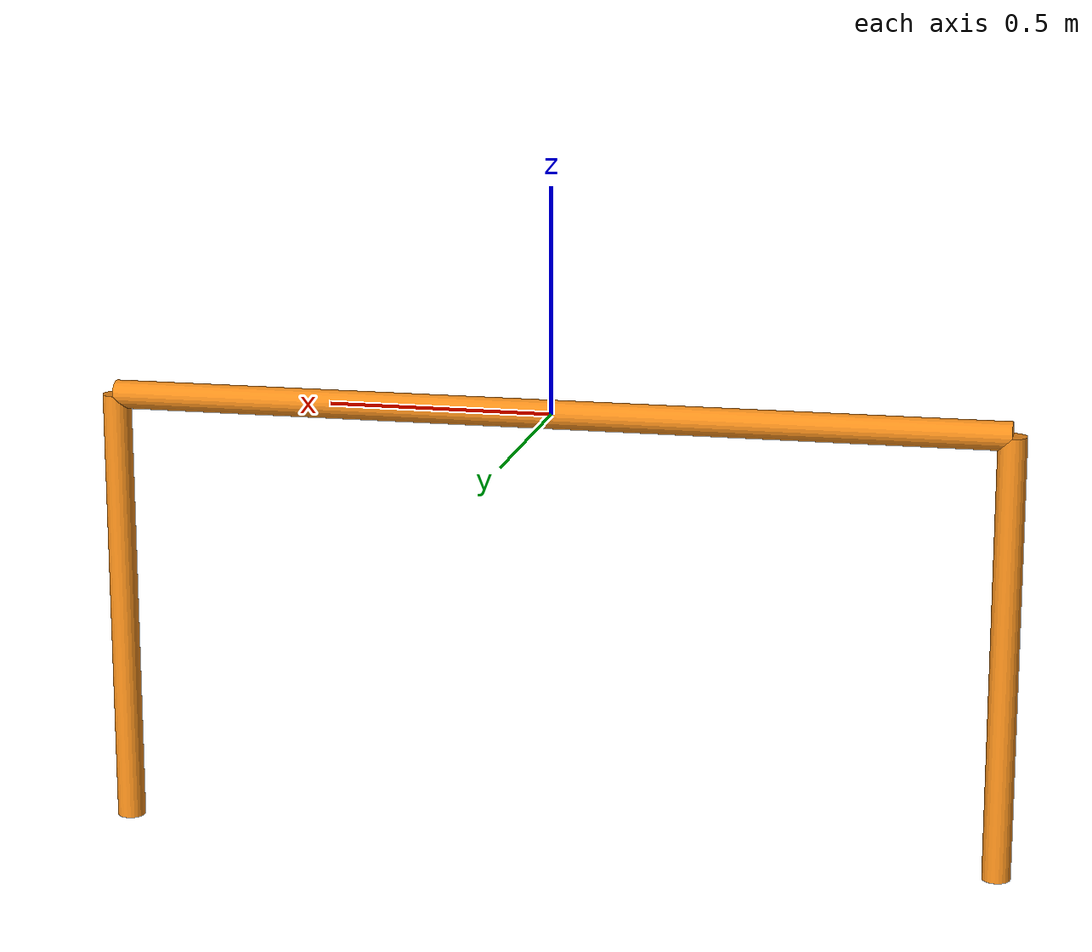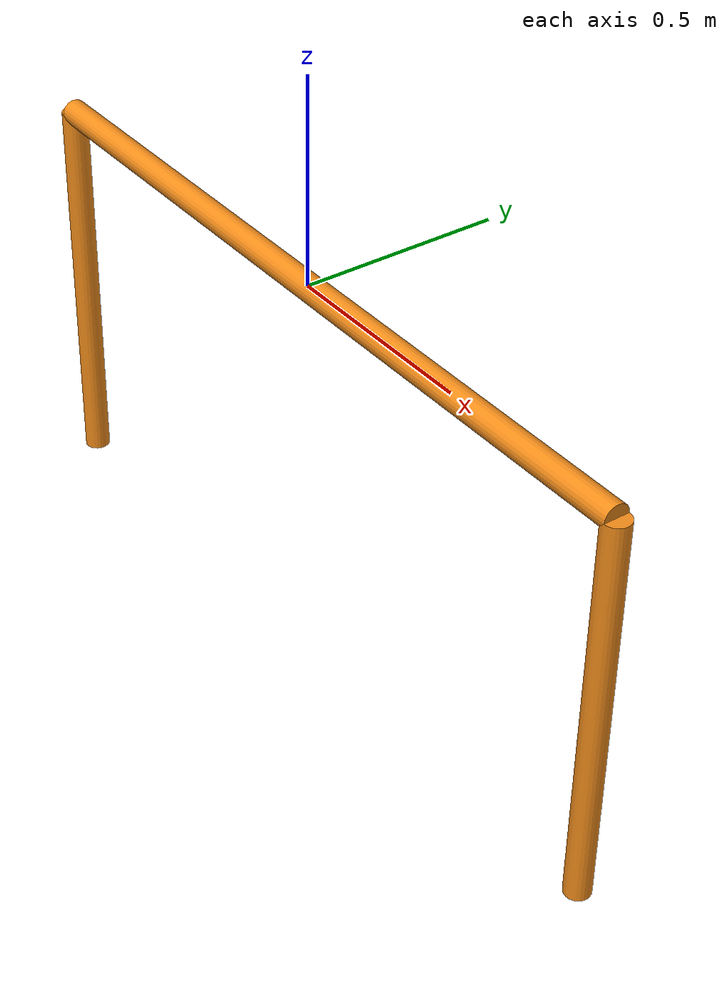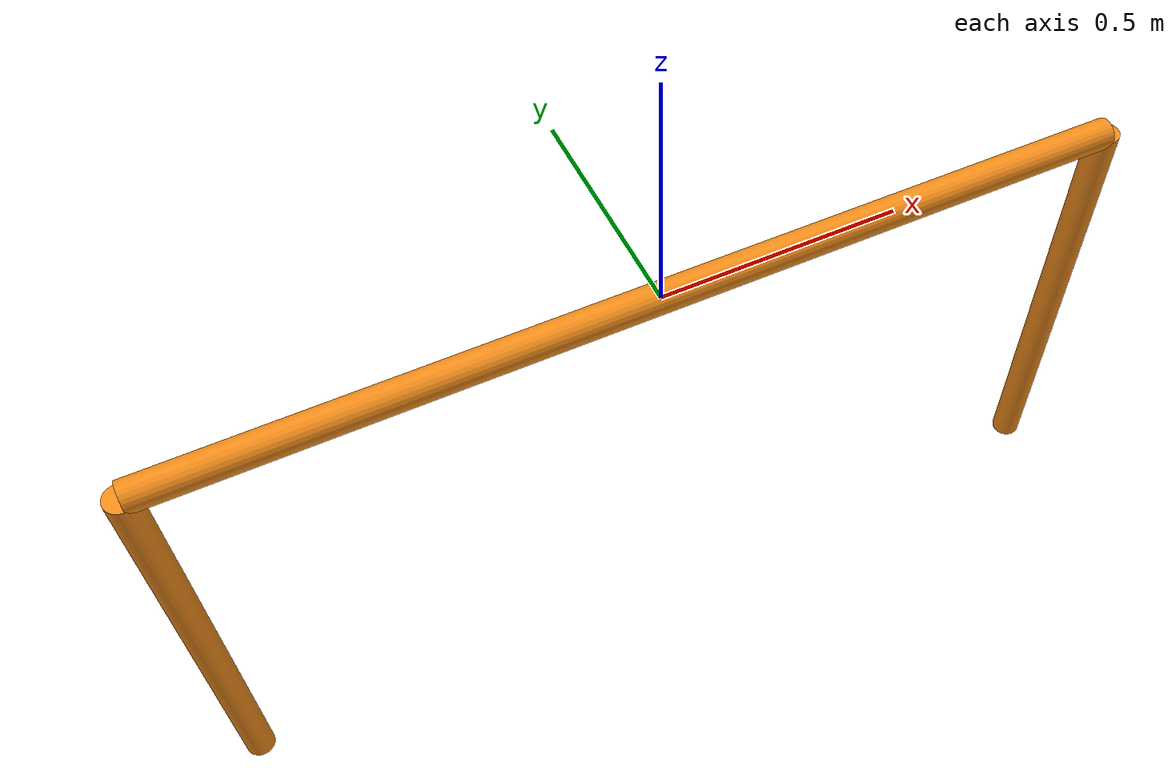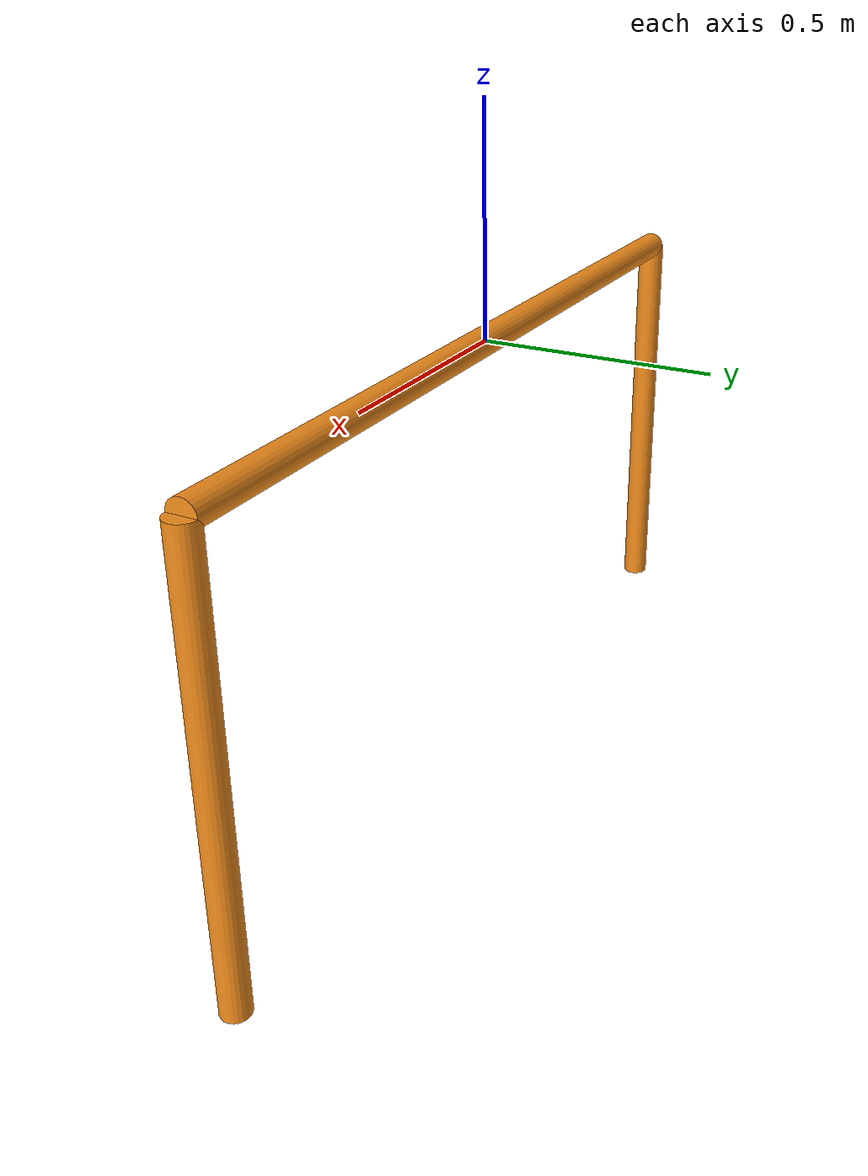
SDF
<?xml version='1.0'?>
<sdf version='1.5'>

  <model name='gate'>
    <pose>0 0 0 0 0 0</pose>
    <self_collide> 0 </self_collide>
    <static> 1</static>

    <link name='gate_top'>
      <pose>0 0 0 0 1.5707 0</pose>

      <visual name='gate_top_vis'>
        <geometry>
          <cylinder>
            <radius>0.03175</radius>
            <length>2.0</length>
          </cylinder>
        </geometry>
        <material>
          <script>
            <uri>file://media/materials/scripts/gazebo.material</uri>
            <name>Gazebo/Orange</name>
          </script>
        </material>
      </visual>

      <collision name='gate_top_collide'>
        <geometry>
          <cylinder>
            <radius>0.0381</radius>
            <length>3.05</length>
          </cylinder>
        </geometry>
      </collision>
    </link>

    <link name='gate_right'>
      <pose>1 0 -0.5 0 0 0</pose>

      <visual name='gate_right_vis'>
        <geometry>
          <cylinder>
            <radius>0.03175</radius>
            <length>1.0</length>
          </cylinder>
        </geometry>
        <material>
          <script>
            <uri>file://media/materials/scripts/gazebo.material</uri>
            <name>Gazebo/Orange</name>
          </script>
          <diffuse>0.6 0.3088 0.0468 1</diffuse>
        </material>
      </visual>

      <collision name='gate_right_collide'>
        <geometry>
          <cylinder>
            <radius>0.0381</radius>
            <length>1.52</length>
          </cylinder>
        </geometry>
      </collision>
    </link>

    <link name='gate_left'>
      <pose>-1.0 0 -0.5 0 0 0</pose>

      <visual name='gate_left_vis'>
        <geometry>
          <cylinder>
            <radius>0.03175</radius>
            <length>1.0</length>
          </cylinder>
        </geometry>
        <material>
          <script>
            <uri>file://media/materials/scripts/gazebo.material</uri>
            <name>Gazebo/Orange</name>
          </script>
          <diffuse>0.6 0.3088 0.0468 1</diffuse>
        </material>
      </visual>

      <collision name='gate_left_collide'>
        <geometry>
          <cylinder>
            <radius>0.0381</radius>
            <length>1.52</length>
          </cylinder>
        </geometry>
      </collision>
    </link>

  </model>
</sdf>
